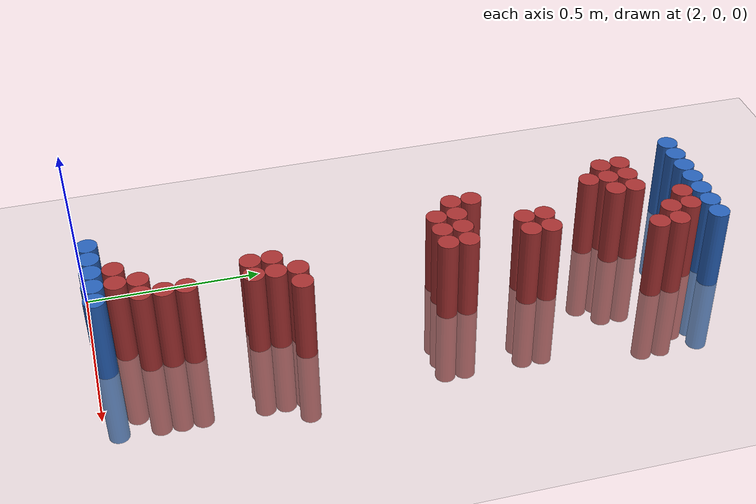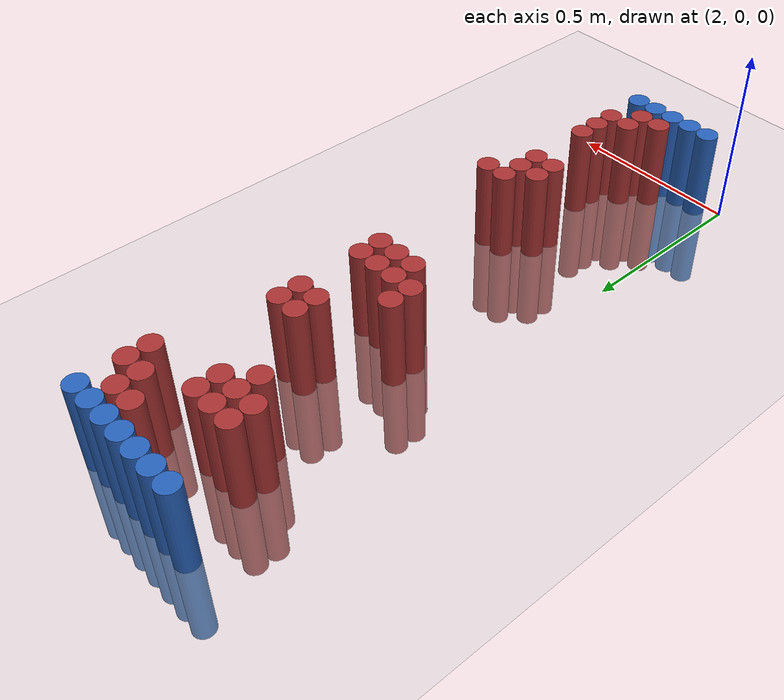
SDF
<sdf version="1.6">
 <world name="default">
  <model name="ground_plane">
   <static>1</static>
   <link name="link">
    <collision name="collision">
     <geometry><plane><normal>0 0 1</normal><size>100 100</size></plane></geometry>
     <surface><friction><ode><mu>100</mu><mu2>50</mu2></ode></friction></surface>
    </collision>
    <visual name="visual">
     <cast_shadows>0</cast_shadows>
     <geometry><plane><normal>0 0 1</normal><size>100 100</size></plane></geometry>
     <material>
      <script><uri>file://media/materials/scripts/gazebo.material</uri><name>Gazebo/Grey</name></script>
     </material>
    </visual>
   </link>
  </model>
  <model name="unit_cylinder_94">
   <static>1</static>
   <pose>2.010000 1.770000 0.000000 0.000000 0.000000 0.000000</pose>
   <link name="link">
    <inertial>
     <mass>1</mass>
     <inertia><ixx>0.145833</ixx><ixy>0</ixy><ixz>0</ixz><iyy>0.145833</iyy><iyz>0</iyz><izz>0.125</izz></inertia>
    </inertial>
    <collision name="collision">
     <geometry><cylinder><radius>0.030000</radius><length>0.5</length></cylinder></geometry>
    </collision>
    <visual name="visual">
     <geometry><cylinder><radius>0.030000</radius><length>0.5</length></cylinder></geometry>
     <material>
      <ambient>0.152000 0.379000 0.720000 1</ambient>
      <diffuse>0.152000 0.379000 0.720000 1</diffuse>
     </material>
     <material>
      <script><name>Gazebo/Grey</name><uri>file://media/materials/scripts/gazebo.material</uri></script>
     </material>
    </visual>
   </link>
  </model>
  <model name="unit_cylinder_95">
   <static>1</static>
   <pose>2.070000 1.770000 0.000000 0.000000 0.000000 0.000000</pose>
   <link name="link">
    <inertial>
     <mass>1</mass>
     <inertia><ixx>0.145833</ixx><ixy>0</ixy><ixz>0</ixz><iyy>0.145833</iyy><iyz>0</iyz><izz>0.125</izz></inertia>
    </inertial>
    <collision name="collision">
     <geometry><cylinder><radius>0.030000</radius><length>0.5</length></cylinder></geometry>
    </collision>
    <visual name="visual">
     <geometry><cylinder><radius>0.030000</radius><length>0.5</length></cylinder></geometry>
     <material>
      <ambient>0.152000 0.379000 0.720000 1</ambient>
      <diffuse>0.152000 0.379000 0.720000 1</diffuse>
     </material>
     <material>
      <script><name>Gazebo/Grey</name><uri>file://media/materials/scripts/gazebo.material</uri></script>
     </material>
    </visual>
   </link>
  </model>
  <model name="unit_cylinder_96">
   <static>1</static>
   <pose>2.130000 1.770000 0.000000 0.000000 0.000000 0.000000</pose>
   <link name="link">
    <inertial>
     <mass>1</mass>
     <inertia><ixx>0.145833</ixx><ixy>0</ixy><ixz>0</ixz><iyy>0.145833</iyy><iyz>0</iyz><izz>0.125</izz></inertia>
    </inertial>
    <collision name="collision">
     <geometry><cylinder><radius>0.030000</radius><length>0.5</length></cylinder></geometry>
    </collision>
    <visual name="visual">
     <geometry><cylinder><radius>0.030000</radius><length>0.5</length></cylinder></geometry>
     <material>
      <ambient>0.152000 0.379000 0.720000 1</ambient>
      <diffuse>0.152000 0.379000 0.720000 1</diffuse>
     </material>
     <material>
      <script><name>Gazebo/Grey</name><uri>file://media/materials/scripts/gazebo.material</uri></script>
     </material>
    </visual>
   </link>
  </model>
  <model name="unit_cylinder_97">
   <static>1</static>
   <pose>2.190000 1.770000 0.000000 0.000000 0.000000 0.000000</pose>
   <link name="link">
    <inertial>
     <mass>1</mass>
     <inertia><ixx>0.145833</ixx><ixy>0</ixy><ixz>0</ixz><iyy>0.145833</iyy><iyz>0</iyz><izz>0.125</izz></inertia>
    </inertial>
    <collision name="collision">
     <geometry><cylinder><radius>0.030000</radius><length>0.5</length></cylinder></geometry>
    </collision>
    <visual name="visual">
     <geometry><cylinder><radius>0.030000</radius><length>0.5</length></cylinder></geometry>
     <material>
      <ambient>0.152000 0.379000 0.720000 1</ambient>
      <diffuse>0.152000 0.379000 0.720000 1</diffuse>
     </material>
     <material>
      <script><name>Gazebo/Grey</name><uri>file://media/materials/scripts/gazebo.material</uri></script>
     </material>
    </visual>
   </link>
  </model>
  <model name="unit_cylinder_98">
   <static>1</static>
   <pose>2.250000 1.770000 0.000000 0.000000 0.000000 0.000000</pose>
   <link name="link">
    <inertial>
     <mass>1</mass>
     <inertia><ixx>0.145833</ixx><ixy>0</ixy><ixz>0</ixz><iyy>0.145833</iyy><iyz>0</iyz><izz>0.125</izz></inertia>
    </inertial>
    <collision name="collision">
     <geometry><cylinder><radius>0.030000</radius><length>0.5</length></cylinder></geometry>
    </collision>
    <visual name="visual">
     <geometry><cylinder><radius>0.030000</radius><length>0.5</length></cylinder></geometry>
     <material>
      <ambient>0.152000 0.379000 0.720000 1</ambient>
      <diffuse>0.152000 0.379000 0.720000 1</diffuse>
     </material>
     <material>
      <script><name>Gazebo/Grey</name><uri>file://media/materials/scripts/gazebo.material</uri></script>
     </material>
    </visual>
   </link>
  </model>
  <model name="unit_cylinder_99">
   <static>1</static>
   <pose>2.310000 1.770000 0.000000 0.000000 0.000000 0.000000</pose>
   <link name="link">
    <inertial>
     <mass>1</mass>
     <inertia><ixx>0.145833</ixx><ixy>0</ixy><ixz>0</ixz><iyy>0.145833</iyy><iyz>0</iyz><izz>0.125</izz></inertia>
    </inertial>
    <collision name="collision">
     <geometry><cylinder><radius>0.030000</radius><length>0.5</length></cylinder></geometry>
    </collision>
    <visual name="visual">
     <geometry><cylinder><radius>0.030000</radius><length>0.5</length></cylinder></geometry>
     <material>
      <ambient>0.152000 0.379000 0.720000 1</ambient>
      <diffuse>0.152000 0.379000 0.720000 1</diffuse>
     </material>
     <material>
      <script><name>Gazebo/Grey</name><uri>file://media/materials/scripts/gazebo.material</uri></script>
     </material>
    </visual>
   </link>
  </model>
  <model name="unit_cylinder_100">
   <static>1</static>
   <pose>2.370000 1.770000 0.000000 0.000000 0.000000 0.000000</pose>
   <link name="link">
    <inertial>
     <mass>1</mass>
     <inertia><ixx>0.145833</ixx><ixy>0</ixy><ixz>0</ixz><iyy>0.145833</iyy><iyz>0</iyz><izz>0.125</izz></inertia>
    </inertial>
    <collision name="collision">
     <geometry><cylinder><radius>0.030000</radius><length>0.5</length></cylinder></geometry>
    </collision>
    <visual name="visual">
     <geometry><cylinder><radius>0.030000</radius><length>0.5</length></cylinder></geometry>
     <material>
      <ambient>0.152000 0.379000 0.720000 1</ambient>
      <diffuse>0.152000 0.379000 0.720000 1</diffuse>
     </material>
     <material>
      <script><name>Gazebo/Grey</name><uri>file://media/materials/scripts/gazebo.material</uri></script>
     </material>
    </visual>
   </link>
  </model>
  <model name="unit_cylinder_125">
   <static>1</static>
   <pose>2.250000 1.710000 0.000000 0.000000 0.000000 0.000000</pose>
   <link name="link">
    <inertial>
     <mass>1</mass>
     <inertia><ixx>0.145833</ixx><ixy>0</ixy><ixz>0</ixz><iyy>0.145833</iyy><iyz>0</iyz><izz>0.125</izz></inertia>
    </inertial>
    <collision name="collision">
     <geometry><cylinder><radius>0.030000</radius><length>0.5</length></cylinder></geometry>
    </collision>
    <visual name="visual">
     <geometry><cylinder><radius>0.030000</radius><length>0.5</length></cylinder></geometry>
     <material>
      <ambient>0.648000 0.192000 0.192000 1</ambient>
      <diffuse>0.648000 0.192000 0.192000 1</diffuse>
     </material>
     <material>
      <script><name>Gazebo/Grey</name><uri>file://media/materials/scripts/gazebo.material</uri></script>
     </material>
    </visual>
   </link>
  </model>
  <model name="unit_cylinder_126">
   <static>1</static>
   <pose>2.310000 1.710000 0.000000 0.000000 0.000000 0.000000</pose>
   <link name="link">
    <inertial>
     <mass>1</mass>
     <inertia><ixx>0.145833</ixx><ixy>0</ixy><ixz>0</ixz><iyy>0.145833</iyy><iyz>0</iyz><izz>0.125</izz></inertia>
    </inertial>
    <collision name="collision">
     <geometry><cylinder><radius>0.030000</radius><length>0.5</length></cylinder></geometry>
    </collision>
    <visual name="visual">
     <geometry><cylinder><radius>0.030000</radius><length>0.5</length></cylinder></geometry>
     <material>
      <ambient>0.648000 0.192000 0.192000 1</ambient>
      <diffuse>0.648000 0.192000 0.192000 1</diffuse>
     </material>
     <material>
      <script><name>Gazebo/Grey</name><uri>file://media/materials/scripts/gazebo.material</uri></script>
     </material>
    </visual>
   </link>
  </model>
  <model name="unit_cylinder_134">
   <static>1</static>
   <pose>2.310000 1.650000 0.000000 0.000000 0.000000 0.000000</pose>
   <link name="link">
    <inertial>
     <mass>1</mass>
     <inertia><ixx>0.145833</ixx><ixy>0</ixy><ixz>0</ixz><iyy>0.145833</iyy><iyz>0</iyz><izz>0.125</izz></inertia>
    </inertial>
    <collision name="collision">
     <geometry><cylinder><radius>0.030000</radius><length>0.5</length></cylinder></geometry>
    </collision>
    <visual name="visual">
     <geometry><cylinder><radius>0.030000</radius><length>0.5</length></cylinder></geometry>
     <material>
      <ambient>0.648000 0.192000 0.192000 1</ambient>
      <diffuse>0.648000 0.192000 0.192000 1</diffuse>
     </material>
     <material>
      <script><name>Gazebo/Grey</name><uri>file://media/materials/scripts/gazebo.material</uri></script>
     </material>
    </visual>
   </link>
  </model>
  <model name="unit_cylinder_135">
   <static>1</static>
   <pose>2.370000 1.650000 0.000000 0.000000 0.000000 0.000000</pose>
   <link name="link">
    <inertial>
     <mass>1</mass>
     <inertia><ixx>0.145833</ixx><ixy>0</ixy><ixz>0</ixz><iyy>0.145833</iyy><iyz>0</iyz><izz>0.125</izz></inertia>
    </inertial>
    <collision name="collision">
     <geometry><cylinder><radius>0.030000</radius><length>0.5</length></cylinder></geometry>
    </collision>
    <visual name="visual">
     <geometry><cylinder><radius>0.030000</radius><length>0.5</length></cylinder></geometry>
     <material>
      <ambient>0.648000 0.192000 0.192000 1</ambient>
      <diffuse>0.648000 0.192000 0.192000 1</diffuse>
     </material>
     <material>
      <script><name>Gazebo/Grey</name><uri>file://media/materials/scripts/gazebo.material</uri></script>
     </material>
    </visual>
   </link>
  </model>
  <model name="unit_cylinder_146">
   <static>1</static>
   <pose>2.070000 1.590000 0.000000 0.000000 0.000000 0.000000</pose>
   <link name="link">
    <inertial>
     <mass>1</mass>
     <inertia><ixx>0.145833</ixx><ixy>0</ixy><ixz>0</ixz><iyy>0.145833</iyy><iyz>0</iyz><izz>0.125</izz></inertia>
    </inertial>
    <collision name="collision">
     <geometry><cylinder><radius>0.030000</radius><length>0.5</length></cylinder></geometry>
    </collision>
    <visual name="visual">
     <geometry><cylinder><radius>0.030000</radius><length>0.5</length></cylinder></geometry>
     <material>
      <ambient>0.648000 0.192000 0.192000 1</ambient>
      <diffuse>0.648000 0.192000 0.192000 1</diffuse>
     </material>
     <material>
      <script><name>Gazebo/Grey</name><uri>file://media/materials/scripts/gazebo.material</uri></script>
     </material>
    </visual>
   </link>
  </model>
  <model name="unit_cylinder_147">
   <static>1</static>
   <pose>2.130000 1.590000 0.000000 0.000000 0.000000 0.000000</pose>
   <link name="link">
    <inertial>
     <mass>1</mass>
     <inertia><ixx>0.145833</ixx><ixy>0</ixy><ixz>0</ixz><iyy>0.145833</iyy><iyz>0</iyz><izz>0.125</izz></inertia>
    </inertial>
    <collision name="collision">
     <geometry><cylinder><radius>0.030000</radius><length>0.5</length></cylinder></geometry>
    </collision>
    <visual name="visual">
     <geometry><cylinder><radius>0.030000</radius><length>0.5</length></cylinder></geometry>
     <material>
      <ambient>0.648000 0.192000 0.192000 1</ambient>
      <diffuse>0.648000 0.192000 0.192000 1</diffuse>
     </material>
     <material>
      <script><name>Gazebo/Grey</name><uri>file://media/materials/scripts/gazebo.material</uri></script>
     </material>
    </visual>
   </link>
  </model>
  <model name="unit_cylinder_148">
   <static>1</static>
   <pose>2.190000 1.590000 0.000000 0.000000 0.000000 0.000000</pose>
   <link name="link">
    <inertial>
     <mass>1</mass>
     <inertia><ixx>0.145833</ixx><ixy>0</ixy><ixz>0</ixz><iyy>0.145833</iyy><iyz>0</iyz><izz>0.125</izz></inertia>
    </inertial>
    <collision name="collision">
     <geometry><cylinder><radius>0.030000</radius><length>0.5</length></cylinder></geometry>
    </collision>
    <visual name="visual">
     <geometry><cylinder><radius>0.030000</radius><length>0.5</length></cylinder></geometry>
     <material>
      <ambient>0.648000 0.192000 0.192000 1</ambient>
      <diffuse>0.648000 0.192000 0.192000 1</diffuse>
     </material>
     <material>
      <script><name>Gazebo/Grey</name><uri>file://media/materials/scripts/gazebo.material</uri></script>
     </material>
    </visual>
   </link>
  </model>
  <model name="unit_cylinder_149">
   <static>1</static>
   <pose>2.370000 1.590000 0.000000 0.000000 0.000000 0.000000</pose>
   <link name="link">
    <inertial>
     <mass>1</mass>
     <inertia><ixx>0.145833</ixx><ixy>0</ixy><ixz>0</ixz><iyy>0.145833</iyy><iyz>0</iyz><izz>0.125</izz></inertia>
    </inertial>
    <collision name="collision">
     <geometry><cylinder><radius>0.030000</radius><length>0.5</length></cylinder></geometry>
    </collision>
    <visual name="visual">
     <geometry><cylinder><radius>0.030000</radius><length>0.5</length></cylinder></geometry>
     <material>
      <ambient>0.648000 0.192000 0.192000 1</ambient>
      <diffuse>0.648000 0.192000 0.192000 1</diffuse>
     </material>
     <material>
      <script><name>Gazebo/Grey</name><uri>file://media/materials/scripts/gazebo.material</uri></script>
     </material>
    </visual>
   </link>
  </model>
  <model name="unit_cylinder_158">
   <static>1</static>
   <pose>2.070000 1.530000 0.000000 0.000000 0.000000 0.000000</pose>
   <link name="link">
    <inertial>
     <mass>1</mass>
     <inertia><ixx>0.145833</ixx><ixy>0</ixy><ixz>0</ixz><iyy>0.145833</iyy><iyz>0</iyz><izz>0.125</izz></inertia>
    </inertial>
    <collision name="collision">
     <geometry><cylinder><radius>0.030000</radius><length>0.5</length></cylinder></geometry>
    </collision>
    <visual name="visual">
     <geometry><cylinder><radius>0.030000</radius><length>0.5</length></cylinder></geometry>
     <material>
      <ambient>0.648000 0.192000 0.192000 1</ambient>
      <diffuse>0.648000 0.192000 0.192000 1</diffuse>
     </material>
     <material>
      <script><name>Gazebo/Grey</name><uri>file://media/materials/scripts/gazebo.material</uri></script>
     </material>
    </visual>
   </link>
  </model>
  <model name="unit_cylinder_159">
   <static>1</static>
   <pose>2.130000 1.530000 0.000000 0.000000 0.000000 0.000000</pose>
   <link name="link">
    <inertial>
     <mass>1</mass>
     <inertia><ixx>0.145833</ixx><ixy>0</ixy><ixz>0</ixz><iyy>0.145833</iyy><iyz>0</iyz><izz>0.125</izz></inertia>
    </inertial>
    <collision name="collision">
     <geometry><cylinder><radius>0.030000</radius><length>0.5</length></cylinder></geometry>
    </collision>
    <visual name="visual">
     <geometry><cylinder><radius>0.030000</radius><length>0.5</length></cylinder></geometry>
     <material>
      <ambient>0.648000 0.192000 0.192000 1</ambient>
      <diffuse>0.648000 0.192000 0.192000 1</diffuse>
     </material>
     <material>
      <script><name>Gazebo/Grey</name><uri>file://media/materials/scripts/gazebo.material</uri></script>
     </material>
    </visual>
   </link>
  </model>
  <model name="unit_cylinder_160">
   <static>1</static>
   <pose>2.190000 1.530000 0.000000 0.000000 0.000000 0.000000</pose>
   <link name="link">
    <inertial>
     <mass>1</mass>
     <inertia><ixx>0.145833</ixx><ixy>0</ixy><ixz>0</ixz><iyy>0.145833</iyy><iyz>0</iyz><izz>0.125</izz></inertia>
    </inertial>
    <collision name="collision">
     <geometry><cylinder><radius>0.030000</radius><length>0.5</length></cylinder></geometry>
    </collision>
    <visual name="visual">
     <geometry><cylinder><radius>0.030000</radius><length>0.5</length></cylinder></geometry>
     <material>
      <ambient>0.648000 0.192000 0.192000 1</ambient>
      <diffuse>0.648000 0.192000 0.192000 1</diffuse>
     </material>
     <material>
      <script><name>Gazebo/Grey</name><uri>file://media/materials/scripts/gazebo.material</uri></script>
     </material>
    </visual>
   </link>
  </model>
  <model name="unit_cylinder_165">
   <static>1</static>
   <pose>2.130000 1.470000 0.000000 0.000000 0.000000 0.000000</pose>
   <link name="link">
    <inertial>
     <mass>1</mass>
     <inertia><ixx>0.145833</ixx><ixy>0</ixy><ixz>0</ixz><iyy>0.145833</iyy><iyz>0</iyz><izz>0.125</izz></inertia>
    </inertial>
    <collision name="collision">
     <geometry><cylinder><radius>0.030000</radius><length>0.5</length></cylinder></geometry>
    </collision>
    <visual name="visual">
     <geometry><cylinder><radius>0.030000</radius><length>0.5</length></cylinder></geometry>
     <material>
      <ambient>0.648000 0.192000 0.192000 1</ambient>
      <diffuse>0.648000 0.192000 0.192000 1</diffuse>
     </material>
     <material>
      <script><name>Gazebo/Grey</name><uri>file://media/materials/scripts/gazebo.material</uri></script>
     </material>
    </visual>
   </link>
  </model>
  <model name="unit_cylinder_184">
   <static>1</static>
   <pose>2.250000 1.290000 0.000000 0.000000 0.000000 0.000000</pose>
   <link name="link">
    <inertial>
     <mass>1</mass>
     <inertia><ixx>0.145833</ixx><ixy>0</ixy><ixz>0</ixz><iyy>0.145833</iyy><iyz>0</iyz><izz>0.125</izz></inertia>
    </inertial>
    <collision name="collision">
     <geometry><cylinder><radius>0.030000</radius><length>0.5</length></cylinder></geometry>
    </collision>
    <visual name="visual">
     <geometry><cylinder><radius>0.030000</radius><length>0.5</length></cylinder></geometry>
     <material>
      <ambient>0.648000 0.192000 0.192000 1</ambient>
      <diffuse>0.648000 0.192000 0.192000 1</diffuse>
     </material>
     <material>
      <script><name>Gazebo/Grey</name><uri>file://media/materials/scripts/gazebo.material</uri></script>
     </material>
    </visual>
   </link>
  </model>
  <model name="unit_cylinder_185">
   <static>1</static>
   <pose>2.310000 1.290000 0.000000 0.000000 0.000000 0.000000</pose>
   <link name="link">
    <inertial>
     <mass>1</mass>
     <inertia><ixx>0.145833</ixx><ixy>0</ixy><ixz>0</ixz><iyy>0.145833</iyy><iyz>0</iyz><izz>0.125</izz></inertia>
    </inertial>
    <collision name="collision">
     <geometry><cylinder><radius>0.030000</radius><length>0.5</length></cylinder></geometry>
    </collision>
    <visual name="visual">
     <geometry><cylinder><radius>0.030000</radius><length>0.5</length></cylinder></geometry>
     <material>
      <ambient>0.648000 0.192000 0.192000 1</ambient>
      <diffuse>0.648000 0.192000 0.192000 1</diffuse>
     </material>
     <material>
      <script><name>Gazebo/Grey</name><uri>file://media/materials/scripts/gazebo.material</uri></script>
     </material>
    </visual>
   </link>
  </model>
  <model name="unit_cylinder_191">
   <static>1</static>
   <pose>2.250000 1.230000 0.000000 0.000000 0.000000 0.000000</pose>
   <link name="link">
    <inertial>
     <mass>1</mass>
     <inertia><ixx>0.145833</ixx><ixy>0</ixy><ixz>0</ixz><iyy>0.145833</iyy><iyz>0</iyz><izz>0.125</izz></inertia>
    </inertial>
    <collision name="collision">
     <geometry><cylinder><radius>0.030000</radius><length>0.5</length></cylinder></geometry>
    </collision>
    <visual name="visual">
     <geometry><cylinder><radius>0.030000</radius><length>0.5</length></cylinder></geometry>
     <material>
      <ambient>0.648000 0.192000 0.192000 1</ambient>
      <diffuse>0.648000 0.192000 0.192000 1</diffuse>
     </material>
     <material>
      <script><name>Gazebo/Grey</name><uri>file://media/materials/scripts/gazebo.material</uri></script>
     </material>
    </visual>
   </link>
  </model>
  <model name="unit_cylinder_192">
   <static>1</static>
   <pose>2.310000 1.230000 0.000000 0.000000 0.000000 0.000000</pose>
   <link name="link">
    <inertial>
     <mass>1</mass>
     <inertia><ixx>0.145833</ixx><ixy>0</ixy><ixz>0</ixz><iyy>0.145833</iyy><iyz>0</iyz><izz>0.125</izz></inertia>
    </inertial>
    <collision name="collision">
     <geometry><cylinder><radius>0.030000</radius><length>0.5</length></cylinder></geometry>
    </collision>
    <visual name="visual">
     <geometry><cylinder><radius>0.030000</radius><length>0.5</length></cylinder></geometry>
     <material>
      <ambient>0.648000 0.192000 0.192000 1</ambient>
      <diffuse>0.648000 0.192000 0.192000 1</diffuse>
     </material>
     <material>
      <script><name>Gazebo/Grey</name><uri>file://media/materials/scripts/gazebo.material</uri></script>
     </material>
    </visual>
   </link>
  </model>
  <model name="unit_cylinder_202">
   <static>1</static>
   <pose>2.130000 1.110000 0.000000 0.000000 0.000000 0.000000</pose>
   <link name="link">
    <inertial>
     <mass>1</mass>
     <inertia><ixx>0.145833</ixx><ixy>0</ixy><ixz>0</ixz><iyy>0.145833</iyy><iyz>0</iyz><izz>0.125</izz></inertia>
    </inertial>
    <collision name="collision">
     <geometry><cylinder><radius>0.030000</radius><length>0.5</length></cylinder></geometry>
    </collision>
    <visual name="visual">
     <geometry><cylinder><radius>0.030000</radius><length>0.5</length></cylinder></geometry>
     <material>
      <ambient>0.648000 0.192000 0.192000 1</ambient>
      <diffuse>0.648000 0.192000 0.192000 1</diffuse>
     </material>
     <material>
      <script><name>Gazebo/Grey</name><uri>file://media/materials/scripts/gazebo.material</uri></script>
     </material>
    </visual>
   </link>
  </model>
  <model name="unit_cylinder_204">
   <static>1</static>
   <pose>2.130000 1.050000 0.000000 0.000000 0.000000 0.000000</pose>
   <link name="link">
    <inertial>
     <mass>1</mass>
     <inertia><ixx>0.145833</ixx><ixy>0</ixy><ixz>0</ixz><iyy>0.145833</iyy><iyz>0</iyz><izz>0.125</izz></inertia>
    </inertial>
    <collision name="collision">
     <geometry><cylinder><radius>0.030000</radius><length>0.5</length></cylinder></geometry>
    </collision>
    <visual name="visual">
     <geometry><cylinder><radius>0.030000</radius><length>0.5</length></cylinder></geometry>
     <material>
      <ambient>0.648000 0.192000 0.192000 1</ambient>
      <diffuse>0.648000 0.192000 0.192000 1</diffuse>
     </material>
     <material>
      <script><name>Gazebo/Grey</name><uri>file://media/materials/scripts/gazebo.material</uri></script>
     </material>
    </visual>
   </link>
  </model>
  <model name="unit_cylinder_205">
   <static>1</static>
   <pose>2.190000 1.050000 0.000000 0.000000 0.000000 0.000000</pose>
   <link name="link">
    <inertial>
     <mass>1</mass>
     <inertia><ixx>0.145833</ixx><ixy>0</ixy><ixz>0</ixz><iyy>0.145833</iyy><iyz>0</iyz><izz>0.125</izz></inertia>
    </inertial>
    <collision name="collision">
     <geometry><cylinder><radius>0.030000</radius><length>0.5</length></cylinder></geometry>
    </collision>
    <visual name="visual">
     <geometry><cylinder><radius>0.030000</radius><length>0.5</length></cylinder></geometry>
     <material>
      <ambient>0.648000 0.192000 0.192000 1</ambient>
      <diffuse>0.648000 0.192000 0.192000 1</diffuse>
     </material>
     <material>
      <script><name>Gazebo/Grey</name><uri>file://media/materials/scripts/gazebo.material</uri></script>
     </material>
    </visual>
   </link>
  </model>
  <model name="unit_cylinder_206">
   <static>1</static>
   <pose>2.250000 1.050000 0.000000 0.000000 0.000000 0.000000</pose>
   <link name="link">
    <inertial>
     <mass>1</mass>
     <inertia><ixx>0.145833</ixx><ixy>0</ixy><ixz>0</ixz><iyy>0.145833</iyy><iyz>0</iyz><izz>0.125</izz></inertia>
    </inertial>
    <collision name="collision">
     <geometry><cylinder><radius>0.030000</radius><length>0.5</length></cylinder></geometry>
    </collision>
    <visual name="visual">
     <geometry><cylinder><radius>0.030000</radius><length>0.5</length></cylinder></geometry>
     <material>
      <ambient>0.648000 0.192000 0.192000 1</ambient>
      <diffuse>0.648000 0.192000 0.192000 1</diffuse>
     </material>
     <material>
      <script><name>Gazebo/Grey</name><uri>file://media/materials/scripts/gazebo.material</uri></script>
     </material>
    </visual>
   </link>
  </model>
  <model name="unit_cylinder_207">
   <static>1</static>
   <pose>2.310000 1.050000 0.000000 0.000000 0.000000 0.000000</pose>
   <link name="link">
    <inertial>
     <mass>1</mass>
     <inertia><ixx>0.145833</ixx><ixy>0</ixy><ixz>0</ixz><iyy>0.145833</iyy><iyz>0</iyz><izz>0.125</izz></inertia>
    </inertial>
    <collision name="collision">
     <geometry><cylinder><radius>0.030000</radius><length>0.5</length></cylinder></geometry>
    </collision>
    <visual name="visual">
     <geometry><cylinder><radius>0.030000</radius><length>0.5</length></cylinder></geometry>
     <material>
      <ambient>0.648000 0.192000 0.192000 1</ambient>
      <diffuse>0.648000 0.192000 0.192000 1</diffuse>
     </material>
     <material>
      <script><name>Gazebo/Grey</name><uri>file://media/materials/scripts/gazebo.material</uri></script>
     </material>
    </visual>
   </link>
  </model>
  <model name="unit_cylinder_211">
   <static>1</static>
   <pose>2.190000 0.990000 0.000000 0.000000 0.000000 0.000000</pose>
   <link name="link">
    <inertial>
     <mass>1</mass>
     <inertia><ixx>0.145833</ixx><ixy>0</ixy><ixz>0</ixz><iyy>0.145833</iyy><iyz>0</iyz><izz>0.125</izz></inertia>
    </inertial>
    <collision name="collision">
     <geometry><cylinder><radius>0.030000</radius><length>0.5</length></cylinder></geometry>
    </collision>
    <visual name="visual">
     <geometry><cylinder><radius>0.030000</radius><length>0.5</length></cylinder></geometry>
     <material>
      <ambient>0.648000 0.192000 0.192000 1</ambient>
      <diffuse>0.648000 0.192000 0.192000 1</diffuse>
     </material>
     <material>
      <script><name>Gazebo/Grey</name><uri>file://media/materials/scripts/gazebo.material</uri></script>
     </material>
    </visual>
   </link>
  </model>
  <model name="unit_cylinder_212">
   <static>1</static>
   <pose>2.250000 0.990000 0.000000 0.000000 0.000000 0.000000</pose>
   <link name="link">
    <inertial>
     <mass>1</mass>
     <inertia><ixx>0.145833</ixx><ixy>0</ixy><ixz>0</ixz><iyy>0.145833</iyy><iyz>0</iyz><izz>0.125</izz></inertia>
    </inertial>
    <collision name="collision">
     <geometry><cylinder><radius>0.030000</radius><length>0.5</length></cylinder></geometry>
    </collision>
    <visual name="visual">
     <geometry><cylinder><radius>0.030000</radius><length>0.5</length></cylinder></geometry>
     <material>
      <ambient>0.648000 0.192000 0.192000 1</ambient>
      <diffuse>0.648000 0.192000 0.192000 1</diffuse>
     </material>
     <material>
      <script><name>Gazebo/Grey</name><uri>file://media/materials/scripts/gazebo.material</uri></script>
     </material>
    </visual>
   </link>
  </model>
  <model name="unit_cylinder_213">
   <static>1</static>
   <pose>2.310000 0.990000 0.000000 0.000000 0.000000 0.000000</pose>
   <link name="link">
    <inertial>
     <mass>1</mass>
     <inertia><ixx>0.145833</ixx><ixy>0</ixy><ixz>0</ixz><iyy>0.145833</iyy><iyz>0</iyz><izz>0.125</izz></inertia>
    </inertial>
    <collision name="collision">
     <geometry><cylinder><radius>0.030000</radius><length>0.5</length></cylinder></geometry>
    </collision>
    <visual name="visual">
     <geometry><cylinder><radius>0.030000</radius><length>0.5</length></cylinder></geometry>
     <material>
      <ambient>0.648000 0.192000 0.192000 1</ambient>
      <diffuse>0.648000 0.192000 0.192000 1</diffuse>
     </material>
     <material>
      <script><name>Gazebo/Grey</name><uri>file://media/materials/scripts/gazebo.material</uri></script>
     </material>
    </visual>
   </link>
  </model>
  <model name="unit_cylinder_234">
   <static>1</static>
   <pose>2.310000 0.570000 0.000000 0.000000 0.000000 0.000000</pose>
   <link name="link">
    <inertial>
     <mass>1</mass>
     <inertia><ixx>0.145833</ixx><ixy>0</ixy><ixz>0</ixz><iyy>0.145833</iyy><iyz>0</iyz><izz>0.125</izz></inertia>
    </inertial>
    <collision name="collision">
     <geometry><cylinder><radius>0.030000</radius><length>0.5</length></cylinder></geometry>
    </collision>
    <visual name="visual">
     <geometry><cylinder><radius>0.030000</radius><length>0.5</length></cylinder></geometry>
     <material>
      <ambient>0.648000 0.192000 0.192000 1</ambient>
      <diffuse>0.648000 0.192000 0.192000 1</diffuse>
     </material>
     <material>
      <script><name>Gazebo/Grey</name><uri>file://media/materials/scripts/gazebo.material</uri></script>
     </material>
    </visual>
   </link>
  </model>
  <model name="unit_cylinder_235">
   <static>1</static>
   <pose>2.370000 0.570000 0.000000 0.000000 0.000000 0.000000</pose>
   <link name="link">
    <inertial>
     <mass>1</mass>
     <inertia><ixx>0.145833</ixx><ixy>0</ixy><ixz>0</ixz><iyy>0.145833</iyy><iyz>0</iyz><izz>0.125</izz></inertia>
    </inertial>
    <collision name="collision">
     <geometry><cylinder><radius>0.030000</radius><length>0.5</length></cylinder></geometry>
    </collision>
    <visual name="visual">
     <geometry><cylinder><radius>0.030000</radius><length>0.5</length></cylinder></geometry>
     <material>
      <ambient>0.648000 0.192000 0.192000 1</ambient>
      <diffuse>0.648000 0.192000 0.192000 1</diffuse>
     </material>
     <material>
      <script><name>Gazebo/Grey</name><uri>file://media/materials/scripts/gazebo.material</uri></script>
     </material>
    </visual>
   </link>
  </model>
  <model name="unit_cylinder_239">
   <static>1</static>
   <pose>2.250000 0.510000 0.000000 0.000000 0.000000 0.000000</pose>
   <link name="link">
    <inertial>
     <mass>1</mass>
     <inertia><ixx>0.145833</ixx><ixy>0</ixy><ixz>0</ixz><iyy>0.145833</iyy><iyz>0</iyz><izz>0.125</izz></inertia>
    </inertial>
    <collision name="collision">
     <geometry><cylinder><radius>0.030000</radius><length>0.5</length></cylinder></geometry>
    </collision>
    <visual name="visual">
     <geometry><cylinder><radius>0.030000</radius><length>0.5</length></cylinder></geometry>
     <material>
      <ambient>0.648000 0.192000 0.192000 1</ambient>
      <diffuse>0.648000 0.192000 0.192000 1</diffuse>
     </material>
     <material>
      <script><name>Gazebo/Grey</name><uri>file://media/materials/scripts/gazebo.material</uri></script>
     </material>
    </visual>
   </link>
  </model>
  <model name="unit_cylinder_240">
   <static>1</static>
   <pose>2.310000 0.510000 0.000000 0.000000 0.000000 0.000000</pose>
   <link name="link">
    <inertial>
     <mass>1</mass>
     <inertia><ixx>0.145833</ixx><ixy>0</ixy><ixz>0</ixz><iyy>0.145833</iyy><iyz>0</iyz><izz>0.125</izz></inertia>
    </inertial>
    <collision name="collision">
     <geometry><cylinder><radius>0.030000</radius><length>0.5</length></cylinder></geometry>
    </collision>
    <visual name="visual">
     <geometry><cylinder><radius>0.030000</radius><length>0.5</length></cylinder></geometry>
     <material>
      <ambient>0.648000 0.192000 0.192000 1</ambient>
      <diffuse>0.648000 0.192000 0.192000 1</diffuse>
     </material>
     <material>
      <script><name>Gazebo/Grey</name><uri>file://media/materials/scripts/gazebo.material</uri></script>
     </material>
    </visual>
   </link>
  </model>
  <model name="unit_cylinder_244">
   <static>1</static>
   <pose>2.250000 0.450000 0.000000 0.000000 0.000000 0.000000</pose>
   <link name="link">
    <inertial>
     <mass>1</mass>
     <inertia><ixx>0.145833</ixx><ixy>0</ixy><ixz>0</ixz><iyy>0.145833</iyy><iyz>0</iyz><izz>0.125</izz></inertia>
    </inertial>
    <collision name="collision">
     <geometry><cylinder><radius>0.030000</radius><length>0.5</length></cylinder></geometry>
    </collision>
    <visual name="visual">
     <geometry><cylinder><radius>0.030000</radius><length>0.5</length></cylinder></geometry>
     <material>
      <ambient>0.648000 0.192000 0.192000 1</ambient>
      <diffuse>0.648000 0.192000 0.192000 1</diffuse>
     </material>
     <material>
      <script><name>Gazebo/Grey</name><uri>file://media/materials/scripts/gazebo.material</uri></script>
     </material>
    </visual>
   </link>
  </model>
  <model name="unit_cylinder_245">
   <static>1</static>
   <pose>2.310000 0.450000 0.000000 0.000000 0.000000 0.000000</pose>
   <link name="link">
    <inertial>
     <mass>1</mass>
     <inertia><ixx>0.145833</ixx><ixy>0</ixy><ixz>0</ixz><iyy>0.145833</iyy><iyz>0</iyz><izz>0.125</izz></inertia>
    </inertial>
    <collision name="collision">
     <geometry><cylinder><radius>0.030000</radius><length>0.5</length></cylinder></geometry>
    </collision>
    <visual name="visual">
     <geometry><cylinder><radius>0.030000</radius><length>0.5</length></cylinder></geometry>
     <material>
      <ambient>0.648000 0.192000 0.192000 1</ambient>
      <diffuse>0.648000 0.192000 0.192000 1</diffuse>
     </material>
     <material>
      <script><name>Gazebo/Grey</name><uri>file://media/materials/scripts/gazebo.material</uri></script>
     </material>
    </visual>
   </link>
  </model>
  <model name="unit_cylinder_264">
   <static>1</static>
   <pose>2.310000 0.270000 0.000000 0.000000 0.000000 0.000000</pose>
   <link name="link">
    <inertial>
     <mass>1</mass>
     <inertia><ixx>0.145833</ixx><ixy>0</ixy><ixz>0</ixz><iyy>0.145833</iyy><iyz>0</iyz><izz>0.125</izz></inertia>
    </inertial>
    <collision name="collision">
     <geometry><cylinder><radius>0.030000</radius><length>0.5</length></cylinder></geometry>
    </collision>
    <visual name="visual">
     <geometry><cylinder><radius>0.030000</radius><length>0.5</length></cylinder></geometry>
     <material>
      <ambient>0.648000 0.192000 0.192000 1</ambient>
      <diffuse>0.648000 0.192000 0.192000 1</diffuse>
     </material>
     <material>
      <script><name>Gazebo/Grey</name><uri>file://media/materials/scripts/gazebo.material</uri></script>
     </material>
    </visual>
   </link>
  </model>
  <model name="unit_cylinder_268">
   <static>1</static>
   <pose>2.310000 0.210000 0.000000 0.000000 0.000000 0.000000</pose>
   <link name="link">
    <inertial>
     <mass>1</mass>
     <inertia><ixx>0.145833</ixx><ixy>0</ixy><ixz>0</ixz><iyy>0.145833</iyy><iyz>0</iyz><izz>0.125</izz></inertia>
    </inertial>
    <collision name="collision">
     <geometry><cylinder><radius>0.030000</radius><length>0.5</length></cylinder></geometry>
    </collision>
    <visual name="visual">
     <geometry><cylinder><radius>0.030000</radius><length>0.5</length></cylinder></geometry>
     <material>
      <ambient>0.648000 0.192000 0.192000 1</ambient>
      <diffuse>0.648000 0.192000 0.192000 1</diffuse>
     </material>
     <material>
      <script><name>Gazebo/Grey</name><uri>file://media/materials/scripts/gazebo.material</uri></script>
     </material>
    </visual>
   </link>
  </model>
  <model name="unit_cylinder_274">
   <static>1</static>
   <pose>2.250000 0.150000 0.000000 0.000000 0.000000 0.000000</pose>
   <link name="link">
    <inertial>
     <mass>1</mass>
     <inertia><ixx>0.145833</ixx><ixy>0</ixy><ixz>0</ixz><iyy>0.145833</iyy><iyz>0</iyz><izz>0.125</izz></inertia>
    </inertial>
    <collision name="collision">
     <geometry><cylinder><radius>0.030000</radius><length>0.5</length></cylinder></geometry>
    </collision>
    <visual name="visual">
     <geometry><cylinder><radius>0.030000</radius><length>0.5</length></cylinder></geometry>
     <material>
      <ambient>0.648000 0.192000 0.192000 1</ambient>
      <diffuse>0.648000 0.192000 0.192000 1</diffuse>
     </material>
     <material>
      <script><name>Gazebo/Grey</name><uri>file://media/materials/scripts/gazebo.material</uri></script>
     </material>
    </visual>
   </link>
  </model>
  <model name="unit_cylinder_275">
   <static>1</static>
   <pose>2.310000 0.150000 0.000000 0.000000 0.000000 0.000000</pose>
   <link name="link">
    <inertial>
     <mass>1</mass>
     <inertia><ixx>0.145833</ixx><ixy>0</ixy><ixz>0</ixz><iyy>0.145833</iyy><iyz>0</iyz><izz>0.125</izz></inertia>
    </inertial>
    <collision name="collision">
     <geometry><cylinder><radius>0.030000</radius><length>0.5</length></cylinder></geometry>
    </collision>
    <visual name="visual">
     <geometry><cylinder><radius>0.030000</radius><length>0.5</length></cylinder></geometry>
     <material>
      <ambient>0.648000 0.192000 0.192000 1</ambient>
      <diffuse>0.648000 0.192000 0.192000 1</diffuse>
     </material>
     <material>
      <script><name>Gazebo/Grey</name><uri>file://media/materials/scripts/gazebo.material</uri></script>
     </material>
    </visual>
   </link>
  </model>
  <model name="unit_cylinder_286">
   <static>1</static>
   <pose>2.190000 0.090000 0.000000 0.000000 0.000000 0.000000</pose>
   <link name="link">
    <inertial>
     <mass>1</mass>
     <inertia><ixx>0.145833</ixx><ixy>0</ixy><ixz>0</ixz><iyy>0.145833</iyy><iyz>0</iyz><izz>0.125</izz></inertia>
    </inertial>
    <collision name="collision">
     <geometry><cylinder><radius>0.030000</radius><length>0.5</length></cylinder></geometry>
    </collision>
    <visual name="visual">
     <geometry><cylinder><radius>0.030000</radius><length>0.5</length></cylinder></geometry>
     <material>
      <ambient>0.648000 0.192000 0.192000 1</ambient>
      <diffuse>0.648000 0.192000 0.192000 1</diffuse>
     </material>
     <material>
      <script><name>Gazebo/Grey</name><uri>file://media/materials/scripts/gazebo.material</uri></script>
     </material>
    </visual>
   </link>
  </model>
  <model name="unit_cylinder_287">
   <static>1</static>
   <pose>2.250000 0.090000 0.000000 0.000000 0.000000 0.000000</pose>
   <link name="link">
    <inertial>
     <mass>1</mass>
     <inertia><ixx>0.145833</ixx><ixy>0</ixy><ixz>0</ixz><iyy>0.145833</iyy><iyz>0</iyz><izz>0.125</izz></inertia>
    </inertial>
    <collision name="collision">
     <geometry><cylinder><radius>0.030000</radius><length>0.5</length></cylinder></geometry>
    </collision>
    <visual name="visual">
     <geometry><cylinder><radius>0.030000</radius><length>0.5</length></cylinder></geometry>
     <material>
      <ambient>0.648000 0.192000 0.192000 1</ambient>
      <diffuse>0.648000 0.192000 0.192000 1</diffuse>
     </material>
     <material>
      <script><name>Gazebo/Grey</name><uri>file://media/materials/scripts/gazebo.material</uri></script>
     </material>
    </visual>
   </link>
  </model>
  <model name="unit_cylinder_301">
   <static>1</static>
   <pose>2.070000 0.030000 0.000000 0.000000 0.000000 0.000000</pose>
   <link name="link">
    <inertial>
     <mass>1</mass>
     <inertia><ixx>0.145833</ixx><ixy>0</ixy><ixz>0</ixz><iyy>0.145833</iyy><iyz>0</iyz><izz>0.125</izz></inertia>
    </inertial>
    <collision name="collision">
     <geometry><cylinder><radius>0.030000</radius><length>0.5</length></cylinder></geometry>
    </collision>
    <visual name="visual">
     <geometry><cylinder><radius>0.030000</radius><length>0.5</length></cylinder></geometry>
     <material>
      <ambient>0.152000 0.379000 0.720000 1</ambient>
      <diffuse>0.152000 0.379000 0.720000 1</diffuse>
     </material>
     <material>
      <script><name>Gazebo/Grey</name><uri>file://media/materials/scripts/gazebo.material</uri></script>
     </material>
    </visual>
   </link>
  </model>
  <model name="unit_cylinder_302">
   <static>1</static>
   <pose>2.130000 0.030000 0.000000 0.000000 0.000000 0.000000</pose>
   <link name="link">
    <inertial>
     <mass>1</mass>
     <inertia><ixx>0.145833</ixx><ixy>0</ixy><ixz>0</ixz><iyy>0.145833</iyy><iyz>0</iyz><izz>0.125</izz></inertia>
    </inertial>
    <collision name="collision">
     <geometry><cylinder><radius>0.030000</radius><length>0.5</length></cylinder></geometry>
    </collision>
    <visual name="visual">
     <geometry><cylinder><radius>0.030000</radius><length>0.5</length></cylinder></geometry>
     <material>
      <ambient>0.152000 0.379000 0.720000 1</ambient>
      <diffuse>0.152000 0.379000 0.720000 1</diffuse>
     </material>
     <material>
      <script><name>Gazebo/Grey</name><uri>file://media/materials/scripts/gazebo.material</uri></script>
     </material>
    </visual>
   </link>
  </model>
  <model name="unit_cylinder_303">
   <static>1</static>
   <pose>2.190000 0.030000 0.000000 0.000000 0.000000 0.000000</pose>
   <link name="link">
    <inertial>
     <mass>1</mass>
     <inertia><ixx>0.145833</ixx><ixy>0</ixy><ixz>0</ixz><iyy>0.145833</iyy><iyz>0</iyz><izz>0.125</izz></inertia>
    </inertial>
    <collision name="collision">
     <geometry><cylinder><radius>0.030000</radius><length>0.5</length></cylinder></geometry>
    </collision>
    <visual name="visual">
     <geometry><cylinder><radius>0.030000</radius><length>0.5</length></cylinder></geometry>
     <material>
      <ambient>0.152000 0.379000 0.720000 1</ambient>
      <diffuse>0.152000 0.379000 0.720000 1</diffuse>
     </material>
     <material>
      <script><name>Gazebo/Grey</name><uri>file://media/materials/scripts/gazebo.material</uri></script>
     </material>
    </visual>
   </link>
  </model>
  <model name="unit_cylinder_304">
   <static>1</static>
   <pose>2.250000 0.030000 0.000000 0.000000 0.000000 0.000000</pose>
   <link name="link">
    <inertial>
     <mass>1</mass>
     <inertia><ixx>0.145833</ixx><ixy>0</ixy><ixz>0</ixz><iyy>0.145833</iyy><iyz>0</iyz><izz>0.125</izz></inertia>
    </inertial>
    <collision name="collision">
     <geometry><cylinder><radius>0.030000</radius><length>0.5</length></cylinder></geometry>
    </collision>
    <visual name="visual">
     <geometry><cylinder><radius>0.030000</radius><length>0.5</length></cylinder></geometry>
     <material>
      <ambient>0.152000 0.379000 0.720000 1</ambient>
      <diffuse>0.152000 0.379000 0.720000 1</diffuse>
     </material>
     <material>
      <script><name>Gazebo/Grey</name><uri>file://media/materials/scripts/gazebo.material</uri></script>
     </material>
    </visual>
   </link>
  </model>
  <model name="unit_cylinder_305">
   <static>1</static>
   <pose>2.310000 0.030000 0.000000 0.000000 0.000000 0.000000</pose>
   <link name="link">
    <inertial>
     <mass>1</mass>
     <inertia><ixx>0.145833</ixx><ixy>0</ixy><ixz>0</ixz><iyy>0.145833</iyy><iyz>0</iyz><izz>0.125</izz></inertia>
    </inertial>
    <collision name="collision">
     <geometry><cylinder><radius>0.030000</radius><length>0.5</length></cylinder></geometry>
    </collision>
    <visual name="visual">
     <geometry><cylinder><radius>0.030000</radius><length>0.5</length></cylinder></geometry>
     <material>
      <ambient>0.152000 0.379000 0.720000 1</ambient>
      <diffuse>0.152000 0.379000 0.720000 1</diffuse>
     </material>
     <material>
      <script><name>Gazebo/Grey</name><uri>file://media/materials/scripts/gazebo.material</uri></script>
     </material>
    </visual>
   </link>
  </model>
 </world>
</sdf>
